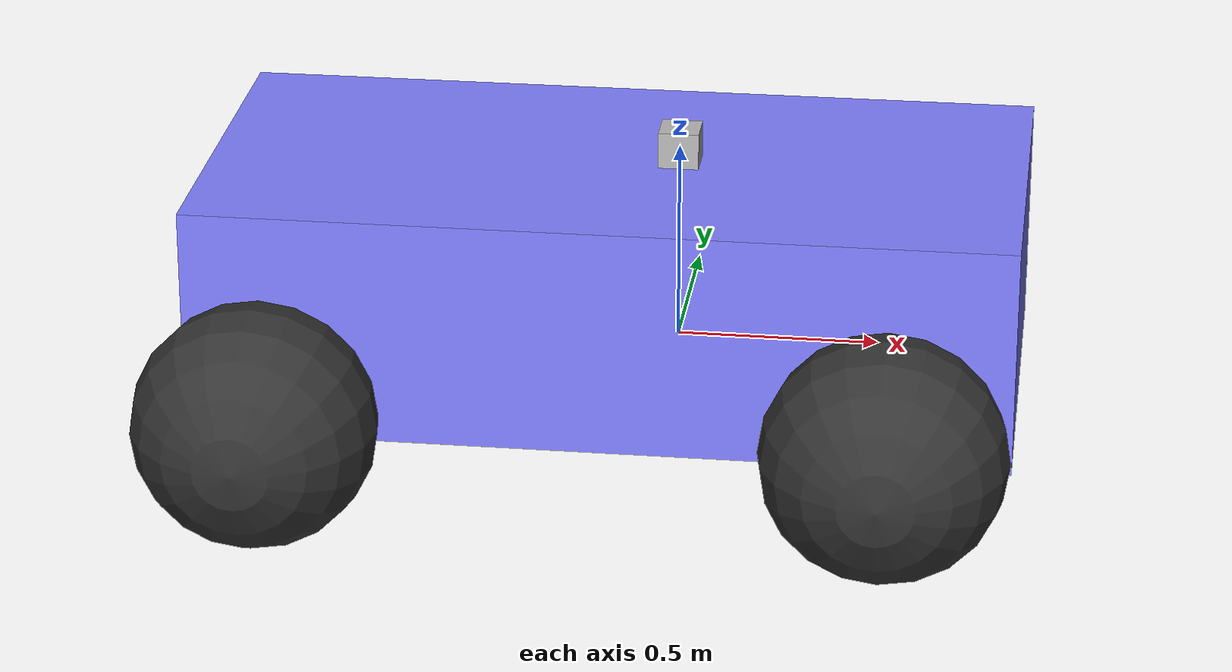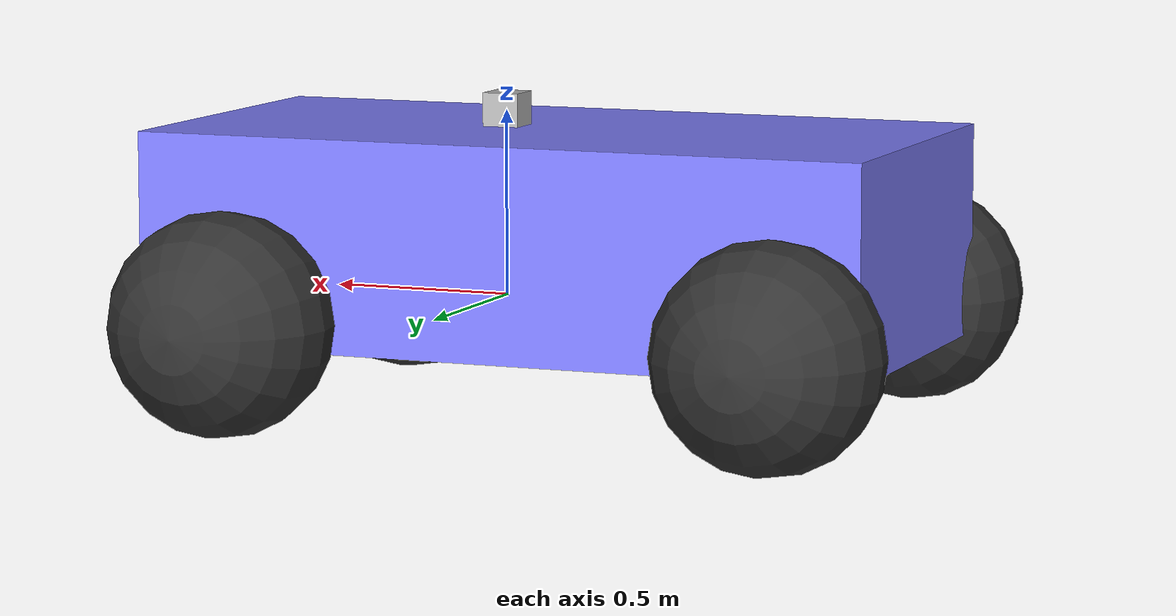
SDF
<?xml version="1.0"?>
<sdf version="1.8">
    <model name='mechanum_drive'>
        <link name='chassis'>
            <pose>-0.151427 -0 0.175 0 -0 0</pose>
            <inertial>
                <mass>1.14395</mass>
                <inertia>
                    <ixx>0.126164</ixx>
                    <ixy>0</ixy>
                    <ixz>0</ixz>
                    <iyy>0.416519</iyy>
                    <iyz>0</iyz>
                    <izz>0.481014</izz>
                </inertia>
            </inertial>
            <visual name='visual_chassis'>
                <geometry>
                    <box>
                        <size>2.01142 1 0.568726</size>
                    </box>
                </geometry>
                <material>
                    <ambient>0.5 0.5 1.0 1</ambient>
                    <diffuse>0.5 0.5 1.0 1</diffuse>
                    <specular>0.0 0.0 1.0 1</specular>
                </material>
            </visual>
            <collision name='collision_chassis'>
                <geometry>
                    <box>
                        <size>2.01142 1 0.568726</size>
                    </box>
                </geometry>
            </collision>
        </link>

        <link name='back_left_wheel'>
            <pose>0.554283 0.625029 -0.025 -1.5707 0 0</pose>
            <inertial>
                <mass>2</mass>
                <inertia>
                    <ixx>0.145833</ixx>
                    <ixy>0</ixy>
                    <ixz>0</ixz>
                    <iyy>0.145833</iyy>
                    <iyz>0</iyz>
                    <izz>0.125</izz>
                </inertia>
            </inertial>
            <visual name='visual_back_left_wheel'>
                <geometry>
                    <sphere>
                        <radius>0.3</radius>
                    </sphere>
                </geometry>
                <material>
                    <ambient>0.2 0.2 0.2 1</ambient>
                    <diffuse>0.2 0.2 0.2 1</diffuse>
                    <specular>0.2 0.2 0.2 1</specular>
                </material>
            </visual>
            <collision name='collision_back_left_wheel'>
                <geometry>
                    <sphere>
                        <radius>0.3</radius>
                    </sphere>
                </geometry>
            </collision>
        </link>

        <link name='back_right_wheel'>
            <pose>0.554282 -0.625029 -0.025 -1.5707 0 0</pose>
            <inertial>
                <mass>2</mass>
                <inertia>
                    <ixx>0.145833</ixx>
                    <ixy>0</ixy>
                    <ixz>0</ixz>
                    <iyy>0.145833</iyy>
                    <iyz>0</iyz>
                    <izz>0.125</izz>
                </inertia>
            </inertial>
            <visual name='visual_back_right_wheel'>
                <geometry>
                    <sphere>
                        <radius>0.3</radius>
                    </sphere>
                </geometry>
                <material>
                    <ambient>0.2 0.2 0.2 1</ambient>
                    <diffuse>0.2 0.2 0.2 1</diffuse>
                    <specular>0.2 0.2 0.2 1</specular>
                </material>
            </visual>
            <collision name='collision_back_right_wheel'>
                <geometry>
                    <sphere>
                        <radius>0.3</radius>
                    </sphere>
                </geometry>
            </collision>
        </link>

        <link name='front_left_wheel'>
            <pose>-0.957138 0.625029 -0.025 -1.5707 0 0</pose>
            <inertial>
                <mass>2</mass>
                <inertia>
                    <ixx>0.145833</ixx>
                    <ixy>0</ixy>
                    <ixz>0</ixz>
                    <iyy>0.145833</iyy>
                    <iyz>0</iyz>
                    <izz>0.125</izz>
                </inertia>
            </inertial>
            <visual name='visual_front_left_wheel'>
                <geometry>
                    <sphere>
                        <radius>0.3</radius>
                    </sphere>
                </geometry>
                <material>
                    <ambient>0.2 0.2 0.2 1</ambient>
                    <diffuse>0.2 0.2 0.2 1</diffuse>
                    <specular>0.2 0.2 0.2 1</specular>
                </material>
            </visual>
            <collision name='collision_front_left_wheel'>
                <geometry>
                    <sphere>
                        <radius>0.3</radius>
                    </sphere>
                </geometry>
            </collision>
        </link>

        <link name='front_right_wheel'>
            <pose>-0.957138 -0.625029 -0.025 -1.5707 0 0</pose>
            <inertial>
                <mass>2</mass>
                <inertia>
                    <ixx>0.145833</ixx>
                    <ixy>0</ixy>
                    <ixz>0</ixz>
                    <iyy>0.145833</iyy>
                    <iyz>0</iyz>
                    <izz>0.125</izz>
                </inertia>
            </inertial>
            <visual name='visual_front_right_wheel'>
                <geometry>
                    <sphere>
                        <radius>0.3</radius>
                    </sphere>
                </geometry>
                <material>
                    <ambient>0.2 0.2 0.2 1</ambient>
                    <diffuse>0.2 0.2 0.2 1</diffuse>
                    <specular>0.2 0.2 0.2 1</specular>
                </material>
            </visual>
            <collision name='collision_front_right_wheel'>
                <geometry>
                    <sphere>
                        <radius>0.3</radius>
                    </sphere>
                </geometry>
            </collision>
        </link>

        <link name="lidar_link">
            <pose>0 0 0.5 0 0 0</pose>
            <inertial>
                <mass>0.1</mass>
                <inertia>
                    <ixx>0.000166667</ixx>
                    <iyy>0.000166667</iyy>
                    <izz>0.000166667</izz>
                </inertia>
            </inertial>
            <collision name="collision">
                <geometry>
                    <box>
                        <size>0.1 0.1 0.1</size>
                    </box>
                </geometry>
            </collision>
            <visual name="visual">
                <geometry>
                    <box>
                        <size>0.1 0.1 0.1</size>
                    </box>
                </geometry>
            </visual>
            <sensor name='gpu_lidar' type='gpu_lidar'>
                <pose>0 0 0 0 0 0</pose>
                <topic>scan</topic>
                <ignition_frame_id>mechanum_drive/lidar_link</ignition_frame_id>
                <update_rate>10</update_rate>
                <lidar>
                    <scan>
                        <horizontal>
                            <samples>640</samples>
                            <resolution>1</resolution>
                            <min_angle>-1.396263</min_angle>
                            <max_angle>1.396263</max_angle>
                        </horizontal>
                        <vertical>
                            <samples>1</samples>
                            <resolution>1</resolution>
                            <min_angle>0.0</min_angle>
                            <max_angle>0.0</max_angle>
                        </vertical>
                    </scan>
                    <range>
                        <min>0.08</min>
                        <max>10.0</max>
                        <resolution>0.01</resolution>
                    </range>
                </lidar>
                <visualize>true</visualize>
            </sensor>
        </link>

        <joint name='lidar_joint' type='fixed'>
            <parent>chassis</parent>
            <child>lidar_link</child>
        </joint>

        <joint name='back_left_wheel_joint' type='revolute'>
            <parent>chassis</parent>
            <child>back_left_wheel</child>
            <axis>
                <xyz>0 0 1</xyz>
                <limit>
                    <lower>-1.79769e+308</lower>
                    <upper>1.79769e+308</upper>
                </limit>
            </axis>
        </joint>

        <joint name='back_right_wheel_joint' type='revolute'>
            <parent>chassis</parent>
            <child>back_right_wheel</child>
            <axis>
                <xyz>0 0 1</xyz>
                <limit>
                    <lower>-1.79769e+308</lower>
                    <upper>1.79769e+308</upper>
                </limit>
            </axis>
        </joint>

        <joint name='front_right_wheel_joint' type='revolute'>
            <parent>chassis</parent>
            <child>front_right_wheel</child>
            <axis>
                <xyz>0 0 1</xyz>
                <limit>
                    <lower>-1.79769e+308</lower>
                    <upper>1.79769e+308</upper>
                </limit>
            </axis>
        </joint>

        <joint name='front_left_wheel_joint' type='revolute'>
            <parent>chassis</parent>
            <child>front_left_wheel</child>
            <axis>
                <xyz>0 0 1</xyz>
                <limit>
                    <lower>-1.79769e+308</lower>
                    <upper>1.79769e+308</upper>
                </limit>
            </axis>
        </joint>

        <plugin
            filename="ignition-gazebo-mecanum-drive-system"
            name="ignition::gazebo::systems::MecanumDrive">
            <front_left_joint>front_left_wheel_joint</front_left_joint>
            <front_right_joint>front_right_wheel_joint</front_right_joint>
            <back_left_joint>rear_left_wheel_joint</back_left_joint>
            <back_right_joint>rear_right_wheel_joint</back_right_joint>
            <wheel_separation>1.25</wheel_separation>
            <wheelbase>0.4</wheelbase>
            <wheel_radius>0.3</wheel_radius>
            <odom_publish_frequency>1</odom_publish_frequency>
            <max_linear_acceleration>1</max_linear_acceleration>
            <min_linear_acceleration>-1</min_linear_acceleration>
            <max_angular_acceleration>2</max_angular_acceleration>
            <min_angular_acceleration>-2</min_angular_acceleration>
            <max_linear_velocity>0.5</max_linear_velocity>
            <min_linear_velocity>-0.5</min_linear_velocity>
            <max_angular_velocity>1</max_angular_velocity>
            <min_angular_velocity>-1</min_angular_velocity>
        </plugin>

    </model>
</sdf>
